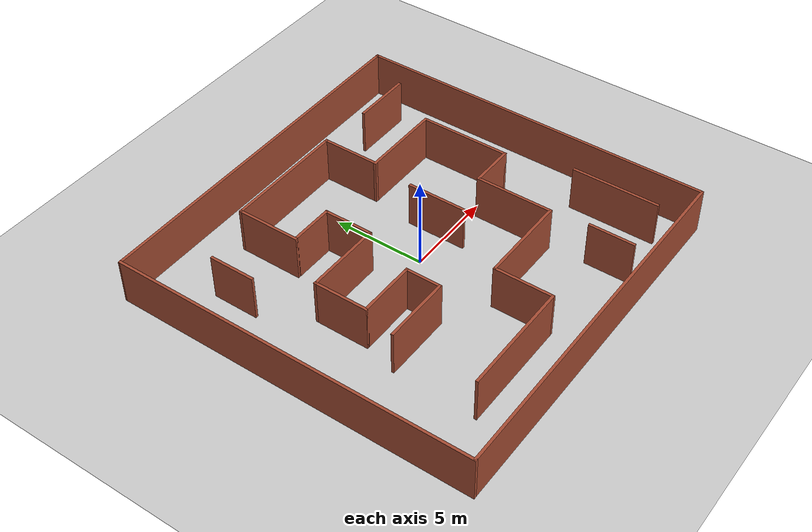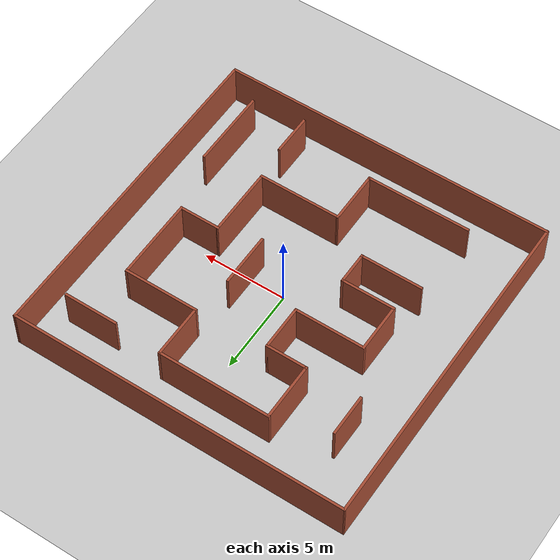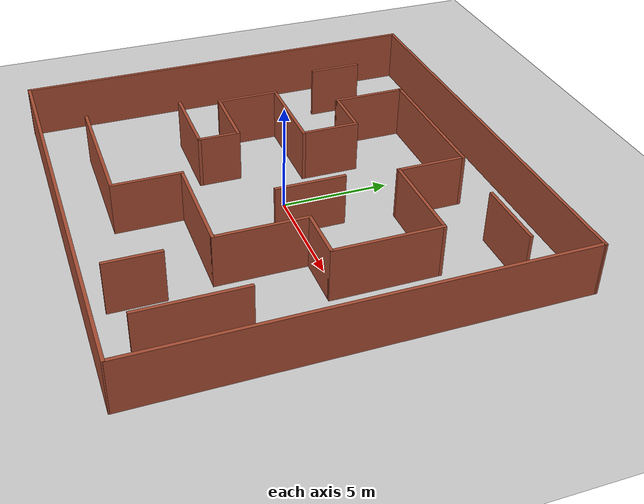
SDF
<?xml version='1.0'?>
<sdf version='1.4'>
<world name="walls">
  <include>
      <uri>model://ground_plane</uri>
    </include>

    <!-- Global light source -->
    <include>
      <uri>model://sun</uri>
    </include>

    <!-- Focus camera on tall pendulum -->
    <gui fullscreen='0'>
      <camera name='user_camera'>
        <pose>4.927360 -4.376610 3.740080 0.000000 0.275643 2.356190</pose>
        <view_controller>orbit</view_controller>
      </camera>
    </gui>

  <model name='new.sdf'>
    <pose frame=''>-0.105283 -0.005066 0 0 -0 0</pose>
    <link name='Wall_0'>
      <collision name='Wall_0_Collision'>
        <geometry>
          <box>
            <size>19.995 0.15 2.5</size>
          </box>
        </geometry>
        <pose frame=''>0 0 1.25 0 -0 0</pose>
      </collision>
      <visual name='Wall_0_Visual'>
        <pose frame=''>0 0 1.25 0 -0 0</pose>
        <geometry>
          <box>
            <size>19.995 0.15 2.5</size>
          </box>
        </geometry>
        <material>
          <script>
            <uri>file://media/materials/scripts/gazebo.material</uri>
            <name>Gazebo/Bricks</name>
          </script>
          <ambient>1 1 1 1</ambient>
        </material>
        <meta>
          <layer>0</layer>
        </meta>
      </visual>
      <pose frame=''>0.015783 -9.82793 0 0 -0 0</pose>
    </link>
    <link name='Wall_10'>
      <collision name='Wall_10_Collision'>
        <geometry>
          <box>
            <size>3.25 0.15 2.5</size>
          </box>
        </geometry>
        <pose frame=''>0 0 1.25 0 -0 0</pose>
      </collision>
      <visual name='Wall_10_Visual'>
        <pose frame=''>0 0 1.25 0 -0 0</pose>
        <geometry>
          <box>
            <size>3.25 0.15 2.5</size>
          </box>
        </geometry>
        <material>
          <script>
            <uri>file://media/materials/scripts/gazebo.material</uri>
            <name>Gazebo/Bricks</name>
          </script>
          <ambient>1 1 1 1</ambient>
        </material>
        <meta>
          <layer>0</layer>
        </meta>
      </visual>
      <pose frame=''>-0.325713 -6.0596 0 0 -0 1.5708</pose>
    </link>
    <link name='Wall_11'>
      <collision name='Wall_11_Collision'>
        <geometry>
          <box>
            <size>5 0.15 2.5</size>
          </box>
        </geometry>
        <pose frame=''>0 0 1.25 0 -0 0</pose>
      </collision>
      <visual name='Wall_11_Visual'>
        <pose frame=''>0 0 1.25 0 -0 0</pose>
        <geometry>
          <box>
            <size>5 0.15 2.5</size>
          </box>
        </geometry>
        <material>
          <script>
            <uri>file://media/materials/scripts/gazebo.material</uri>
            <name>Gazebo/Bricks</name>
          </script>
          <ambient>1 1 1 1</ambient>
        </material>
        <meta>
          <layer>0</layer>
        </meta>
      </visual>
      <pose frame=''>2.09929 -4.5096 0 0 -0 0</pose>
    </link>
    <link name='Wall_12'>
      <collision name='Wall_12_Collision'>
        <geometry>
          <box>
            <size>4.25 0.15 2.5</size>
          </box>
        </geometry>
        <pose frame=''>0 0 1.25 0 -0 0</pose>
      </collision>
      <visual name='Wall_12_Visual'>
        <pose frame=''>0 0 1.25 0 -0 0</pose>
        <geometry>
          <box>
            <size>4.25 0.15 2.5</size>
          </box>
        </geometry>
        <material>
          <script>
            <uri>file://media/materials/scripts/gazebo.material</uri>
            <name>Gazebo/Bricks</name>
          </script>
          <ambient>1 1 1 1</ambient>
        </material>
        <meta>
          <layer>0</layer>
        </meta>
      </visual>
      <pose frame=''>4.52429 -2.4596 0 0 -0 1.5708</pose>
    </link>
    <link name='Wall_13'>
      <collision name='Wall_13_Collision'>
        <geometry>
          <box>
            <size>2.5 0.15 2.5</size>
          </box>
        </geometry>
        <pose frame=''>0 0 1.25 0 -0 0</pose>
      </collision>
      <visual name='Wall_13_Visual'>
        <pose frame=''>0 0 1.25 0 -0 0</pose>
        <geometry>
          <box>
            <size>2.5 0.15 2.5</size>
          </box>
        </geometry>
        <material>
          <script>
            <uri>file://media/materials/scripts/gazebo.material</uri>
            <name>Gazebo/Bricks</name>
          </script>
          <ambient>1 1 1 1</ambient>
        </material>
        <meta>
          <layer>0</layer>
        </meta>
      </visual>
      <pose frame=''>5.69929 -0.4096 0 0 -0 0</pose>
    </link>
    <link name='Wall_14'>
      <collision name='Wall_14_Collision'>
        <geometry>
          <box>
            <size>5 0.15 2.5</size>
          </box>
        </geometry>
        <pose frame=''>0 0 1.25 0 -0 0</pose>
      </collision>
      <visual name='Wall_14_Visual'>
        <pose frame=''>0 0 1.25 0 -0 0</pose>
        <geometry>
          <box>
            <size>5 0.15 2.5</size>
          </box>
        </geometry>
        <material>
          <script>
            <uri>file://media/materials/scripts/gazebo.material</uri>
            <name>Gazebo/Bricks</name>
          </script>
          <ambient>1 1 1 1</ambient>
        </material>
        <meta>
          <layer>0</layer>
        </meta>
      </visual>
      <pose frame=''>6.87429 2.0154 0 0 -0 1.5708</pose>
    </link>
    <link name='Wall_15'>
      <collision name='Wall_15_Collision'>
        <geometry>
          <box>
            <size>4.5 0.15 2.5</size>
          </box>
        </geometry>
        <pose frame=''>0 0 1.25 0 -0 0</pose>
      </collision>
      <visual name='Wall_15_Visual'>
        <pose frame=''>0 0 1.25 0 -0 0</pose>
        <geometry>
          <box>
            <size>4.5 0.15 2.5</size>
          </box>
        </geometry>
        <material>
          <script>
            <uri>file://media/materials/scripts/gazebo.material</uri>
            <name>Gazebo/Bricks</name>
          </script>
          <ambient>1 1 1 1</ambient>
        </material>
        <meta>
          <layer>0</layer>
        </meta>
      </visual>
      <pose frame=''>4.69929 4.4404 0 0 -0 3.14159</pose>
    </link>
    <link name='Wall_16'>
      <collision name='Wall_16_Collision'>
        <geometry>
          <box>
            <size>3.25 0.15 2.5</size>
          </box>
        </geometry>
        <pose frame=''>0 0 1.25 0 -0 0</pose>
      </collision>
      <visual name='Wall_16_Visual'>
        <pose frame=''>0 0 1.25 0 -0 0</pose>
        <geometry>
          <box>
            <size>3.25 0.15 2.5</size>
          </box>
        </geometry>
        <material>
          <script>
            <uri>file://media/materials/scripts/gazebo.material</uri>
            <name>Gazebo/Bricks</name>
          </script>
          <ambient>1 1 1 1</ambient>
        </material>
        <meta>
          <layer>0</layer>
        </meta>
      </visual>
      <pose frame=''>2.52429 5.9904 0 0 -0 1.5708</pose>
    </link>
    <link name='Wall_17'>
      <collision name='Wall_17_Collision'>
        <geometry>
          <box>
            <size>6.75 0.15 2.5</size>
          </box>
        </geometry>
        <pose frame=''>0 0 1.25 0 -0 0</pose>
      </collision>
      <visual name='Wall_17_Visual'>
        <pose frame=''>0 0 1.25 0 -0 0</pose>
        <geometry>
          <box>
            <size>6.75 0.15 2.5</size>
          </box>
        </geometry>
        <material>
          <script>
            <uri>file://media/materials/scripts/gazebo.material</uri>
            <name>Gazebo/Bricks</name>
          </script>
          <ambient>1 1 1 1</ambient>
        </material>
        <meta>
          <layer>0</layer>
        </meta>
      </visual>
      <pose frame=''>-0.775713 7.5404 0 0 -0 3.14159</pose>
    </link>
    <link name='Wall_18'>
      <collision name='Wall_18_Collision'>
        <geometry>
          <box>
            <size>3.5 0.15 2.5</size>
          </box>
        </geometry>
        <pose frame=''>0 0 1.25 0 -0 0</pose>
      </collision>
      <visual name='Wall_18_Visual'>
        <pose frame=''>0 0 1.25 0 -0 0</pose>
        <geometry>
          <box>
            <size>3.5 0.15 2.5</size>
          </box>
        </geometry>
        <material>
          <script>
            <uri>file://media/materials/scripts/gazebo.material</uri>
            <name>Gazebo/Bricks</name>
          </script>
          <ambient>1 1 1 1</ambient>
        </material>
        <meta>
          <layer>0</layer>
        </meta>
      </visual>
      <pose frame=''>-4.07571 5.8654 0 0 -0 -1.5708</pose>
    </link>
    <link name='Wall_19'>
      <collision name='Wall_19_Collision'>
        <geometry>
          <box>
            <size>2.5 0.15 2.5</size>
          </box>
        </geometry>
        <pose frame=''>0 0 1.25 0 -0 0</pose>
      </collision>
      <visual name='Wall_19_Visual'>
        <pose frame=''>0 0 1.25 0 -0 0</pose>
        <geometry>
          <box>
            <size>2.5 0.15 2.5</size>
          </box>
        </geometry>
        <material>
          <script>
            <uri>file://media/materials/scripts/gazebo.material</uri>
            <name>Gazebo/Bricks</name>
          </script>
          <ambient>1 1 1 1</ambient>
        </material>
        <meta>
          <layer>0</layer>
        </meta>
      </visual>
      <pose frame=''>-2.90071 4.1904 0 0 -0 0</pose>
    </link>
    <link name='Wall_2'>
      <collision name='Wall_2_Collision'>
        <geometry>
          <box>
            <size>19.75 0.15 2.5</size>
          </box>
        </geometry>
        <pose frame=''>0 0 1.25 0 -0 0</pose>
      </collision>
      <visual name='Wall_2_Visual'>
        <pose frame=''>0 0 1.25 0 -0 0</pose>
        <geometry>
          <box>
            <size>19.75 0.15 2.5</size>
          </box>
        </geometry>
        <material>
          <script>
            <uri>file://media/materials/scripts/gazebo.material</uri>
            <name>Gazebo/Bricks</name>
          </script>
          <ambient>1 1 1 1</ambient>
        </material>
        <meta>
          <layer>0</layer>
        </meta>
      </visual>
      <pose frame=''>-9.95431 -0.033247 0 0 -0 -1.5708</pose>
    </link>
    <link name='Wall_20'>
      <collision name='Wall_20_Collision'>
        <geometry>
          <box>
            <size>2.75 0.15 2.5</size>
          </box>
        </geometry>
        <pose frame=''>0 0 1.25 0 -0 0</pose>
      </collision>
      <visual name='Wall_20_Visual'>
        <pose frame=''>0 0 1.25 0 -0 0</pose>
        <geometry>
          <box>
            <size>2.75 0.15 2.5</size>
          </box>
        </geometry>
        <material>
          <script>
            <uri>file://media/materials/scripts/gazebo.material</uri>
            <name>Gazebo/Bricks</name>
          </script>
          <ambient>1 1 1 1</ambient>
        </material>
        <meta>
          <layer>0</layer>
        </meta>
      </visual>
      <pose frame=''>-1.72571 2.8904 0 0 -0 -1.5708</pose>
    </link>
    <link name='Wall_21'>
      <collision name='Wall_21_Collision'>
        <geometry>
          <box>
            <size>4.25 0.15 2.5</size>
          </box>
        </geometry>
        <pose frame=''>0 0 1.25 0 -0 0</pose>
      </collision>
      <visual name='Wall_21_Visual'>
        <pose frame=''>0 0 1.25 0 -0 0</pose>
        <geometry>
          <box>
            <size>4.25 0.15 2.5</size>
          </box>
        </geometry>
        <material>
          <script>
            <uri>file://media/materials/scripts/gazebo.material</uri>
            <name>Gazebo/Bricks</name>
          </script>
          <ambient>1 1 1 1</ambient>
        </material>
        <meta>
          <layer>0</layer>
        </meta>
      </visual>
      <pose frame=''>-3.77571 1.5904 0 0 -0 3.14159</pose>
    </link>
    <link name='Wall_22'>
      <collision name='Wall_22_Collision'>
        <geometry>
          <box>
            <size>3 0.15 2.5</size>
          </box>
        </geometry>
        <pose frame=''>0 0 1.25 0 -0 0</pose>
      </collision>
      <visual name='Wall_22_Visual'>
        <pose frame=''>0 0 1.25 0 -0 0</pose>
        <geometry>
          <box>
            <size>3 0.15 2.5</size>
          </box>
        </geometry>
        <material>
          <script>
            <uri>file://media/materials/scripts/gazebo.material</uri>
            <name>Gazebo/Bricks</name>
          </script>
          <ambient>1 1 1 1</ambient>
        </material>
        <meta>
          <layer>0</layer>
        </meta>
      </visual>
      <pose frame=''>-5.82571 0.1654 0 0 -0 -1.5708</pose>
    </link>
    <link name='Wall_23'>
      <collision name='Wall_23_Collision'>
        <geometry>
          <box>
            <size>3.25 0.15 2.5</size>
          </box>
        </geometry>
        <pose frame=''>0 0 1.25 0 -0 0</pose>
      </collision>
      <visual name='Wall_23_Visual'>
        <pose frame=''>0 0 1.25 0 -0 0</pose>
        <geometry>
          <box>
            <size>3.25 0.15 2.5</size>
          </box>
        </geometry>
        <material>
          <script>
            <uri>file://media/materials/scripts/gazebo.material</uri>
            <name>Gazebo/Bricks</name>
          </script>
          <ambient>1 1 1 1</ambient>
        </material>
        <meta>
          <layer>0</layer>
        </meta>
      </visual>
      <pose frame=''>-4.27571 -1.2596 0 0 -0 0</pose>
    </link>
    <link name='Wall_24'>
      <collision name='Wall_24_Collision'>
        <geometry>
          <box>
            <size>2 0.15 2.5</size>
          </box>
        </geometry>
        <pose frame=''>0 0 1.25 0 -0 0</pose>
      </collision>
      <visual name='Wall_24_Visual'>
        <pose frame=''>0 0 1.25 0 -0 0</pose>
        <geometry>
          <box>
            <size>2 0.15 2.5</size>
          </box>
        </geometry>
        <material>
          <script>
            <uri>file://media/materials/scripts/gazebo.material</uri>
            <name>Gazebo/Bricks</name>
          </script>
          <ambient>1 1 1 1</ambient>
        </material>
        <meta>
          <layer>0</layer>
        </meta>
      </visual>
      <pose frame=''>-2.72571 -2.1846 0 0 -0 -1.5708</pose>
    </link>
    <link name='Wall_25'>
      <collision name='Wall_25_Collision'>
        <geometry>
          <box>
            <size>3.75 0.15 2.5</size>
          </box>
        </geometry>
        <pose frame=''>0 0 1.25 0 -0 0</pose>
      </collision>
      <visual name='Wall_25_Visual'>
        <pose frame=''>0 0 1.25 0 -0 0</pose>
        <geometry>
          <box>
            <size>3.75 0.15 2.5</size>
          </box>
        </geometry>
        <material>
          <script>
            <uri>file://media/materials/scripts/gazebo.material</uri>
            <name>Gazebo/Bricks</name>
          </script>
          <ambient>1 1 1 1</ambient>
        </material>
        <meta>
          <layer>0</layer>
        </meta>
      </visual>
      <pose frame=''>-4.52571 -3.1096 0 0 -0 3.14159</pose>
    </link>
    <link name='Wall_27'>
      <collision name='Wall_27_Collision'>
        <geometry>
          <box>
            <size>3.25 0.15 2.5</size>
          </box>
        </geometry>
        <pose frame=''>0 0 1.25 0 -0 0</pose>
      </collision>
      <visual name='Wall_27_Visual'>
        <pose frame=''>0 0 1.25 0 -0 0</pose>
        <geometry>
          <box>
            <size>3.25 0.15 2.5</size>
          </box>
        </geometry>
        <material>
          <script>
            <uri>file://media/materials/scripts/gazebo.material</uri>
            <name>Gazebo/Bricks</name>
          </script>
          <ambient>1 1 1 1</ambient>
        </material>
        <meta>
          <layer>0</layer>
        </meta>
      </visual>
      <pose frame=''>2.17752 0.478858 0 0 -0 1.5708</pose>
    </link>
    <link name='Wall_29'>
      <collision name='Wall_29_Collision'>
        <geometry>
          <box>
            <size>2.5 0.15 2.5</size>
          </box>
        </geometry>
        <pose frame=''>0 0 1.25 0 -0 0</pose>
      </collision>
      <visual name='Wall_29_Visual'>
        <pose frame=''>0 0 1.25 0 -0 0</pose>
        <geometry>
          <box>
            <size>2.5 0.15 2.5</size>
          </box>
        </geometry>
        <material>
          <script>
            <uri>file://media/materials/scripts/gazebo.material</uri>
            <name>Gazebo/Bricks</name>
          </script>
          <ambient>1 1 1 1</ambient>
        </material>
        <meta>
          <layer>0</layer>
        </meta>
      </visual>
      <pose frame=''>4.75849 -7.75221 0 0 -0 -1.5708</pose>
    </link>
    <link name='Wall_31'>
      <collision name='Wall_31_Collision'>
        <geometry>
          <box>
            <size>4.75 0.15 2.5</size>
          </box>
        </geometry>
        <pose frame=''>0 0 1.25 0 -0 0</pose>
      </collision>
      <visual name='Wall_31_Visual'>
        <pose frame=''>0 0 1.25 0 -0 0</pose>
        <geometry>
          <box>
            <size>4.75 0.15 2.5</size>
          </box>
        </geometry>
        <material>
          <script>
            <uri>file://media/materials/scripts/gazebo.material</uri>
            <name>Gazebo/Bricks</name>
          </script>
          <ambient>1 1 1 1</ambient>
        </material>
        <meta>
          <layer>0</layer>
        </meta>
      </visual>
      <pose frame=''>7.85566 -6.21021 0 0 -0 -1.5708</pose>
    </link>
    <link name='Wall_33'>
      <collision name='Wall_33_Collision'>
        <geometry>
          <box>
            <size>3.25 0.15 2.5</size>
          </box>
        </geometry>
        <pose frame=''>0 0 1.25 0 -0 0</pose>
      </collision>
      <visual name='Wall_33_Visual'>
        <pose frame=''>0 0 1.25 0 -0 0</pose>
        <geometry>
          <box>
            <size>3.25 0.15 2.5</size>
          </box>
        </geometry>
        <material>
          <script>
            <uri>file://media/materials/scripts/gazebo.material</uri>
            <name>Gazebo/Bricks</name>
          </script>
          <ambient>1 1 1 1</ambient>
        </material>
        <meta>
          <layer>0</layer>
        </meta>
      </visual>
      <pose frame=''>6.99675 7.36003 0 0 -0 0</pose>
    </link>
    <link name='Wall_35'>
      <collision name='Wall_35_Collision'>
        <geometry>
          <box>
            <size>2.5 0.15 2.5</size>
          </box>
        </geometry>
        <pose frame=''>0 0 1.25 0 -0 0</pose>
      </collision>
      <visual name='Wall_35_Visual'>
        <pose frame=''>0 0 1.25 0 -0 0</pose>
        <geometry>
          <box>
            <size>2.5 0.15 2.5</size>
          </box>
        </geometry>
        <material>
          <script>
            <uri>file://media/materials/scripts/gazebo.material</uri>
            <name>Gazebo/Bricks</name>
          </script>
          <ambient>1 1 1 1</ambient>
        </material>
        <meta>
          <layer>0</layer>
        </meta>
      </visual>
      <pose frame=''>-7.28604 5.3247 0 0 -0 -1.5708</pose>
    </link>
    <link name='Wall_4'>
      <collision name='Wall_4_Collision'>
        <geometry>
          <box>
            <size>19.75 0.15 2.5</size>
          </box>
        </geometry>
        <pose frame=''>0 0 1.25 0 -0 0</pose>
      </collision>
      <visual name='Wall_4_Visual'>
        <pose frame=''>0 0 1.25 0 -0 0</pose>
        <geometry>
          <box>
            <size>19.75 0.15 2.5</size>
          </box>
        </geometry>
        <material>
          <script>
            <uri>file://media/materials/scripts/gazebo.material</uri>
            <name>Gazebo/Bricks</name>
          </script>
          <ambient>1 1 1 1</ambient>
        </material>
        <meta>
          <layer>0</layer>
        </meta>
      </visual>
      <pose frame=''>9.95431 0.032998 0 0 -0 -1.5708</pose>
    </link>
    <link name='Wall_7'>
      <collision name='Wall_7_Collision'>
        <geometry>
          <box>
            <size>20.0587 0.15 2.5</size>
          </box>
        </geometry>
        <pose frame=''>0 0 1.25 0 -0 0</pose>
      </collision>
      <visual name='Wall_7_Visual'>
        <pose frame=''>0 0 1.25 0 -0 0</pose>
        <geometry>
          <box>
            <size>20.0587 0.15 2.5</size>
          </box>
        </geometry>
        <material>
          <script>
            <uri>file://media/materials/scripts/gazebo.material</uri>
            <name>Gazebo/Bricks</name>
          </script>
          <ambient>1 1 1 1</ambient>
        </material>
        <meta>
          <layer>0</layer>
        </meta>
      </visual>
      <pose frame=''>0 9.79988 0 0 -0 0.003327</pose>
    </link>
    <link name='Wall_9'>
      <collision name='Wall_9_Collision'>
        <geometry>
          <box>
            <size>6.25 0.15 2.5</size>
          </box>
        </geometry>
        <pose frame=''>0 0 1.25 0 -0 0</pose>
      </collision>
      <visual name='Wall_9_Visual'>
        <pose frame=''>0 0 1.25 0 -0 0</pose>
        <geometry>
          <box>
            <size>6.25 0.15 2.5</size>
          </box>
        </geometry>
        <material>
          <script>
            <uri>file://media/materials/scripts/gazebo.material</uri>
            <name>Gazebo/Bricks</name>
          </script>
          <ambient>1 1 1 1</ambient>
        </material>
        <meta>
          <layer>0</layer>
        </meta>
      </visual>
      <pose frame=''>-3.37571 -7.6096 0 0 -0 0</pose>
    </link>
    <static>1</static>
  </model>
</world>
</sdf>
